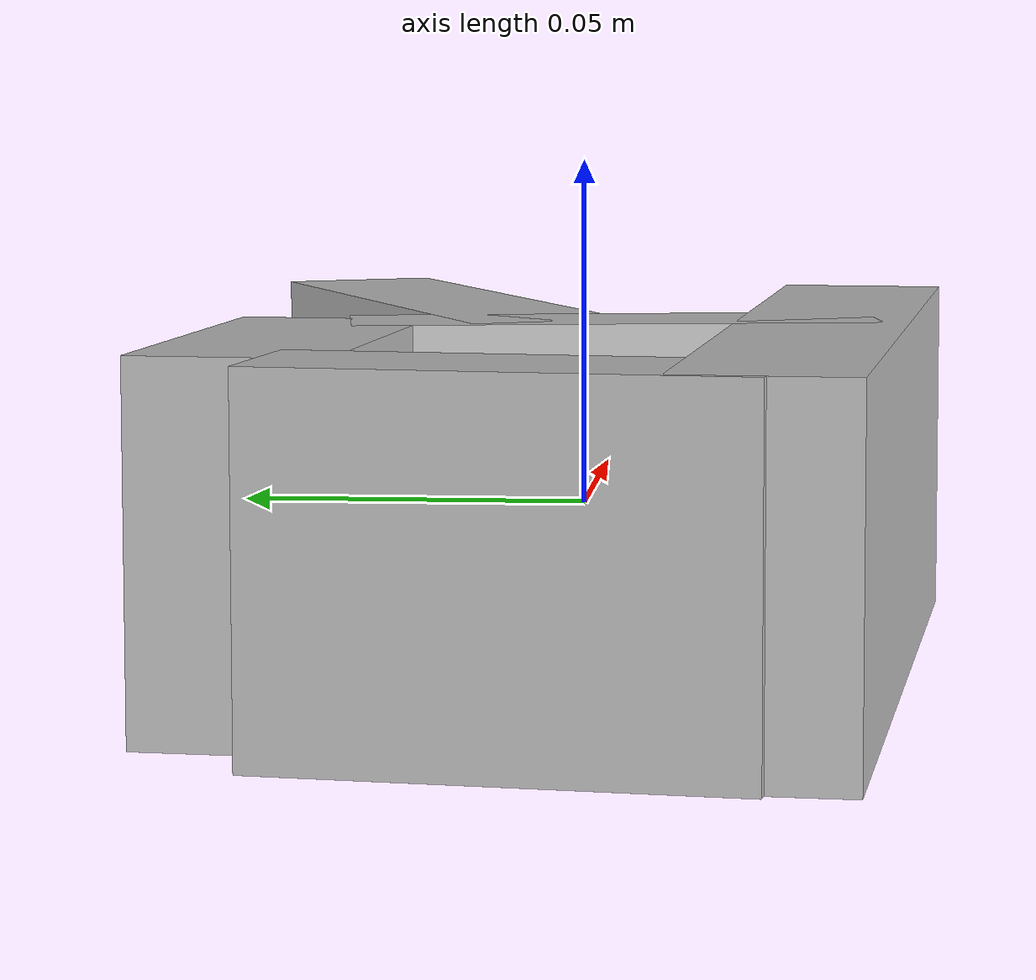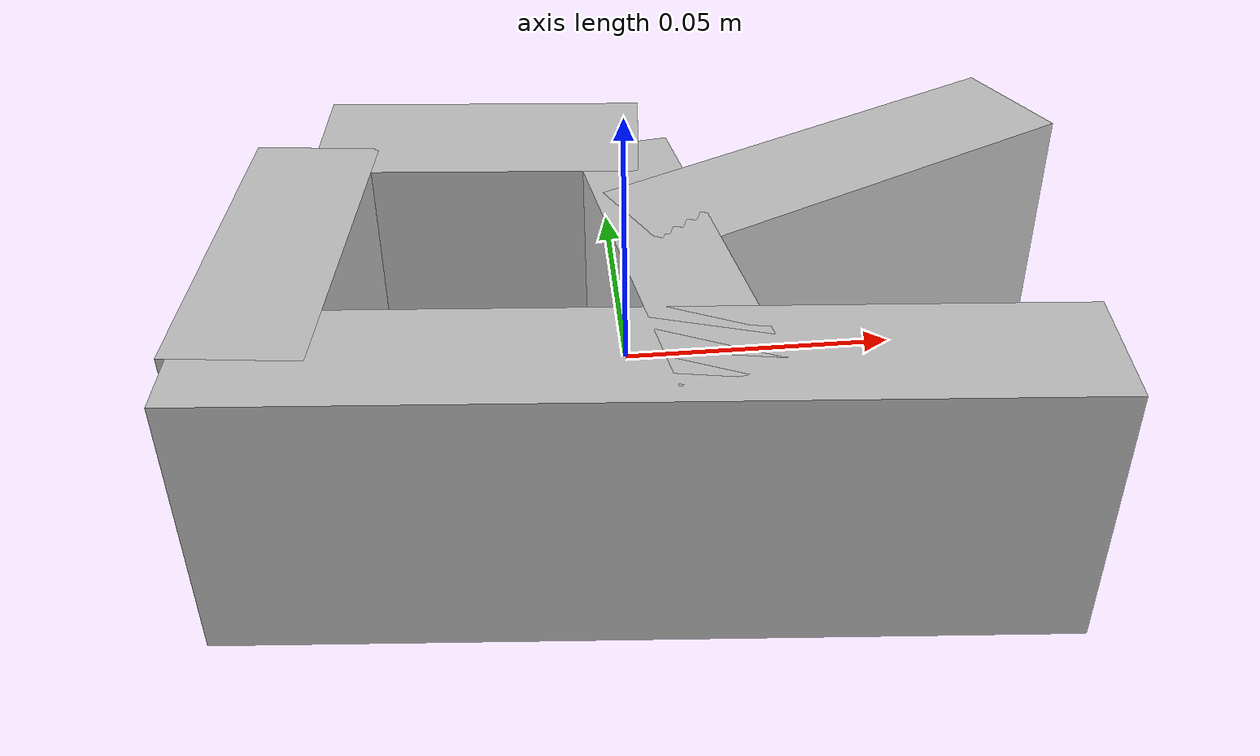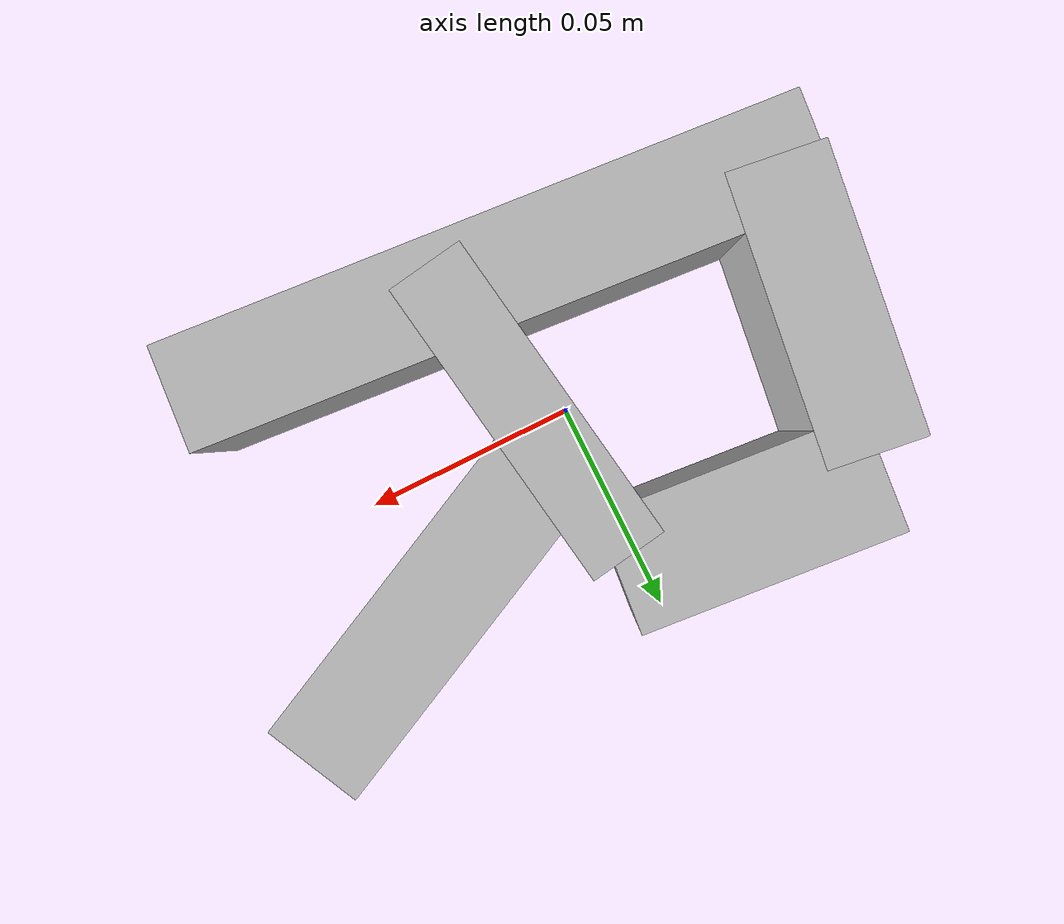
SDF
<?xml version="1.0"?>
<sdf version="1.7">
  <model name="R_shape_texture">
    <link name="R_shape_texture">
      <inertial>
        <pose>-0.003225 -0.000494 -0.000090 0 0 0</pose>
        <mass>0.05</mass>
        <inertia>
          <ixx>6.16999058e-05</ixx>
          <iyy>0.000107645305</iyy>
          <izz>0.00014599786</izz>
          <ixy>4.49825303e-07</ixy>
          <ixz>-1.45139872e-08</ixz>
          <iyz>-2.22419394e-09</iyz>
        </inertia>
      </inertial>
      <visual name="box_0">
        <pose>0.007910 -0.003700 -0.000090 0 0 1.723400</pose>
        <geometry>
          <box><size>0.077630 0.018750 0.052930</size></box>
        </geometry>
        <material>
          <diffuse>0.75 0.75 0.75 1</diffuse>
        </material>
      </visual>
      <collision name="box_0_volume">
        <pose>0.007910 -0.003700 -0.000090 0 0 1.723400</pose>
        <geometry>
          <box><size>0.077630 0.018750 0.052930</size></box>
        </geometry>
        <drake:proximity_properties>
          <drake:compliant_hydroelastic/>
          <drake:hydroelastic_modulus> 3.0e7 </drake:hydroelastic_modulus>
          <drake:mesh_resolution_hint> 0.02 </drake:mesh_resolution_hint>
          <drake:hunt_crossley_dissipation>10</drake:hunt_crossley_dissipation>
          <drake:mu_dynamic>0.3</drake:mu_dynamic>
        </drake:proximity_properties>
      </collision>
      <visual name="box_1">
        <pose>0.043460 0.025010 -0.000090 0 0 0.452220</pose>
        <geometry>
          <box><size>0.090830 0.024210 0.052930</size></box>
        </geometry>
        <material>
          <diffuse>0.75 0.75 0.75 1</diffuse>
        </material>
      </visual>
      <collision name="box_1_volume">
        <pose>0.043460 0.025010 -0.000090 0 0 0.452220</pose>
        <geometry>
          <box><size>0.090830 0.024210 0.052930</size></box>
        </geometry>
        <drake:proximity_properties>
          <drake:compliant_hydroelastic/>
          <drake:hydroelastic_modulus> 3.0e7 </drake:hydroelastic_modulus>
          <drake:mesh_resolution_hint> 0.02 </drake:mesh_resolution_hint>
          <drake:hunt_crossley_dissipation>10</drake:hunt_crossley_dissipation>
          <drake:mu_dynamic>0.3</drake:mu_dynamic>
        </drake:proximity_properties>
      </collision>
      <visual name="box_2">
        <pose>-0.061180 0.004650 -0.000090 0 0 -1.699820</pose>
        <geometry>
          <box><size>0.068830 0.023790 0.052930</size></box>
        </geometry>
        <material>
          <diffuse>0.75 0.75 0.75 1</diffuse>
        </material>
      </visual>
      <collision name="box_2_volume">
        <pose>-0.061180 0.004650 -0.000090 0 0 -1.699820</pose>
        <geometry>
          <box><size>0.068830 0.023790 0.052930</size></box>
        </geometry>
        <drake:proximity_properties>
          <drake:compliant_hydroelastic/>
          <drake:hydroelastic_modulus> 3.0e7 </drake:hydroelastic_modulus>
          <drake:mesh_resolution_hint> 0.02 </drake:mesh_resolution_hint>
          <drake:hunt_crossley_dissipation>10</drake:hunt_crossley_dissipation>
          <drake:mu_dynamic>0.3</drake:mu_dynamic>
        </drake:proximity_properties>
      </collision>
      <visual name="box_3">
        <pose>0.000520 -0.034270 -0.000090 0 0 3.057810</pose>
        <geometry>
          <box><size>0.153010 0.025370 0.052930</size></box>
        </geometry>
        <material>
          <diffuse>0.75 0.75 0.75 1</diffuse>
        </material>
      </visual>
      <collision name="box_3_volume">
        <pose>0.000520 -0.034270 -0.000090 0 0 3.057810</pose>
        <geometry>
          <box><size>0.153010 0.025370 0.052930</size></box>
        </geometry>
        <drake:proximity_properties>
          <drake:compliant_hydroelastic/>
          <drake:hydroelastic_modulus> 3.0e7 </drake:hydroelastic_modulus>
          <drake:mesh_resolution_hint> 0.02 </drake:mesh_resolution_hint>
          <drake:hunt_crossley_dissipation>10</drake:hunt_crossley_dissipation>
          <drake:mu_dynamic>0.3</drake:mu_dynamic>
        </drake:proximity_properties>
      </collision>
      <visual name="box_4">
        <pose>-0.025240 0.040250 -0.000090 0 0 -3.231410</pose>
        <geometry>
          <box><size>0.062540 0.027970 0.052930</size></box>
        </geometry>
        <material>
          <diffuse>0.75 0.75 0.75 1</diffuse>
        </material>
      </visual>
      <collision name="box_4_volume">
        <pose>-0.025240 0.040250 -0.000090 0 0 -3.231410</pose>
        <geometry>
          <box><size>0.062540 0.027970 0.052930</size></box>
        </geometry>
        <drake:proximity_properties>
          <drake:compliant_hydroelastic/>
          <drake:hydroelastic_modulus> 3.0e7 </drake:hydroelastic_modulus>
          <drake:mesh_resolution_hint> 0.02 </drake:mesh_resolution_hint>
          <drake:hunt_crossley_dissipation>10</drake:hunt_crossley_dissipation>
          <drake:mu_dynamic>0.3</drake:mu_dynamic>
        </drake:proximity_properties>
      </collision>
    </link>
  </model>
</sdf>
